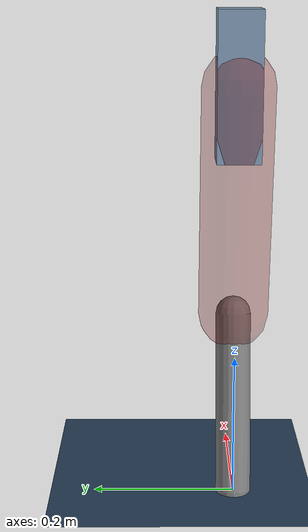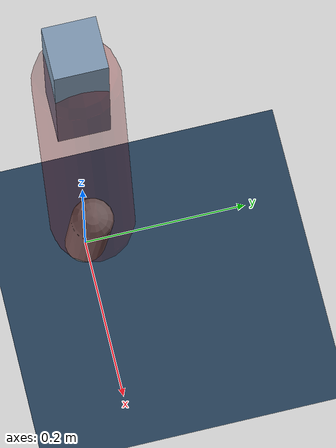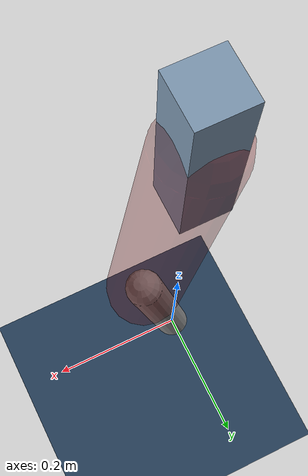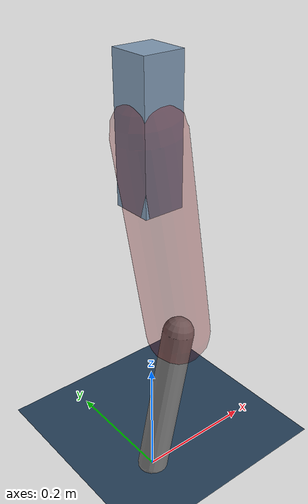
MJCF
<mujoco model="Hopper2D">
	<compiler inertiafromgeom="true" angle="radian" />
	<option timestep="0.001" integrator="implicit" cone="elliptic" solver="Newton" tolerance="1e-10" />

	<default>
		<geom contype="1" conaffinity="1" condim="3" friction="2 0.005 0.0001" solref="0.005 1" />
		<joint limited="true" damping="0.1" />
	</default>

	<asset>
		<texture name="skybox" type="skybox" builtin="gradient" rgb1=".4 .6 .8" rgb2="0 0 0" width="800" height="800" />
		<texture name="grid" type="2d" builtin="checker" rgb1=".1 .2 .3" rgb2=".2 .3 .4" width="300" height="300" mark="edge" markrgb=".2 .3 .4" />
		<material name="ground" texture="grid" texrepeat="1 1" texuniform="true" reflectance="0.1" />
		<material name="leg" rgba="0.5 0.6 0.7 1" />
	</asset>

	<worldbody>

		<geom name="floor" type="plane" size="5 5 0.25" material="ground" />

		<light directional="false" diffuse="0.8 0.8 0.8" specular="0.3 0.3 0.3" pos="0 0 2" dir="0 0 -1" />
		<light mode="targetbodycom" target="base" directional="false" diffuse="0.8 0.8 0.8" specular="0.3 0.3 0.3" pos="0 0 2" dir="0 0 -1" />

		<camera name="fixed" pos="0 -2 1" xyaxes="1 0 0 0 0 1" />
		<camera name="tracking" mode="trackcom" pos="0 -3 1" />

		<body name="root" pos="0 0 0.580528167664529">
			<joint name="slide_x" type="slide" axis="1 0 0" range="-100 100" />
			<joint name="slide_z" type="slide" axis="0 0 1" range="0 10" />

			<body name="base" pos="0 0 0">
				<geom name="torso" type="box" size="0.03 0.03 0.1" mass="2.721" material="leg" />

				<body name="link1" pos="0 0 0" euler="0 1.4095521346878384 0">
					<joint type="hinge" axis="0 -1 0" pos="0 0 0" name="hinge1" limited="true" range="-3.14 3.14" stiffness="0" damping="0.1" />
					<geom name="thigh" type="capsule" fromto="0 0 0 0.33400656175152943 0 0" size="0.05" rgba="0.5 0 0 0.3" mass="1.0819183729042825" />

					<body name="link2" pos="0.33400656175152943 0 0" euler="0 0.3718384327214334 0">
						<joint type="hinge" axis="0 -1 0" pos="0 0 0" name="hinge2" limited="true" range="-3.14 3.14" stiffness="0" damping="0.1" />
						<geom name="shank" type="capsule" fromto="0 0 0 0.25652160591299955 0 0" size="0.025" mass="0.4479172847303996" />

					</body>
				</body>
			</body>
		</body>
	</worldbody>

	<actuator>
		<motor name="torque1" joint="hinge1" ctrlrange="-121.5397843271324 121.5397843271324" ctrllimited="true" gear="1" />
		<motor name="torque2" joint="hinge2" ctrlrange="-82.49872894178637 82.49872894178637" ctrllimited="true" gear="1" />
	</actuator>
</mujoco>
